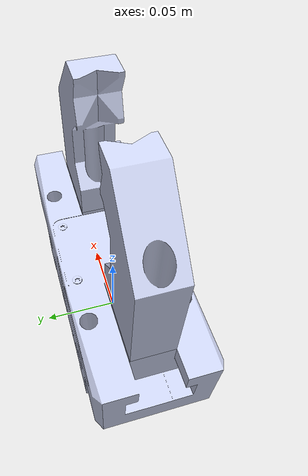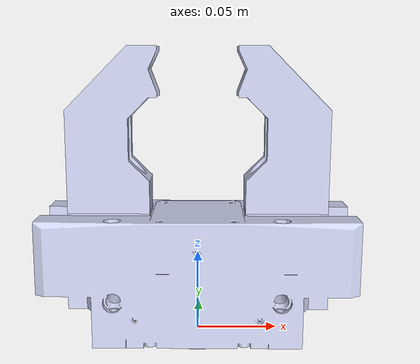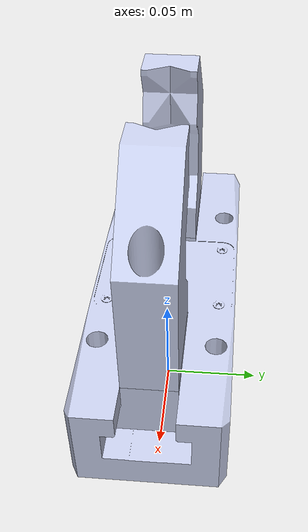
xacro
<?xml version="1.0" ?>

<robot name="pippo" xmlns:xacro="http://ros.org/wiki/xacro">
  <xacro:include filename="$(find schunk_gripper_jpg_p_160_description)/urdf/schunk_gripper_jpg_p_160.xacro" />
  <xacro:arg name="prefix" default=""/>

  <xacro:property name="prefix" value="'$(arg prefix)'" />
  <xacro:property name="type"   value="'rviz'" />

  <xacro:schunk_gripper_jpg_p_160 prefix="${prefix}" type="${type}"/>

  <link name="world"/>
  <joint name="world_joint" type="fixed">
    <origin xyz="0 0 0.0" rpy="0 0 0"/>
    <parent link="world" />
    <child link="${prefix}base" />
  </joint>

</robot>

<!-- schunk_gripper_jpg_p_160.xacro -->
<robot xmlns:xacro="http://ros.org/wiki/xacro">
  <xacro:macro name="schunk_gripper_jpg_p_160" params="prefix:='schunk_' interface:=hardware_interface/EffortJointInterface type:=rviz">

    <link name="${prefix}base" concave='yes'>
      <inertial>
        <origin
          xyz="0.00002849 -0.00022471 0.03657638"
          rpy="0 0 0" />
        <mass
          value="0.6818" />
        <inertia
          ixx="0.00154456"
          ixy="0.00000154"
          ixz="0.00000118"
          iyy="0.00283260"
          iyz="-0.00000405"
          izz="0.00195998" />
      </inertial>
      <visual>
        <origin
          xyz="0 0 0"
          rpy="0 0 0" />
        <geometry>
          <mesh
            filename="package://schunk_gripper_jpg_p_160_description/meshes/SCHUNK_parallel_gripper_base.STL" />
        </geometry>
        <material
          name="">
          <color
            rgba="0.79216 0.81961 0.93333 1" />
        </material>
      </visual>
      <collision concave="yes">
        <origin
          xyz="0 0 0"
          rpy="0 0 0" />
        <geometry>
          <mesh
            filename="package://schunk_gripper_jpg_p_160_description/meshes/SCHUNK_parallel_gripper_base.STL" />
        </geometry>
      </collision>
    </link>

    <joint name="${prefix}left_joint"
      type="prismatic">
      <origin
        xyz="0.0006 0 0.0481"
        rpy="0 0 0" />
      <parent
        link="${prefix}base" />
      <child
        link="${prefix}left_slider" />
      <axis
        xyz="1 0 0" />
      <limit lower="0.000" upper="0.017" effort="1000" velocity="1000000"/>
      <mimic joint="${prefix}left_joint_circle" multiplier="0.05" offset="-0.00086" />
    </joint>
    <link name="${prefix}left_slider" concave="yes">
      <inertial>
        <origin
          xyz="0.03936113 -0.00000000 0.01237203"
          rpy="0 0 0" />
        <mass
          value="0.070" />
        <inertia
          ixx="0.00002269"
          ixy="0.00000000"
          ixz="0.00003426"
          iyy="0.00015861"
          iyz="-0.00000000"
          izz="0.00015142" />
      </inertial>
      <visual>
        <origin
          xyz="0 0 0"
          rpy="0 0 0" />
        <geometry>
          <mesh
            filename="package://schunk_gripper_jpg_p_160_description/meshes/SCHUNK_parallel_gripper_finger_slider.STL" />
        </geometry>
        <material
          name="">
          <color
            rgba="0.79216 0.81961 0.93333 1" />
        </material>
      </visual>
      <collision concave="yes">
        <origin
          xyz="0 0 0"
          rpy="0 0 0" />
        <geometry>
          <mesh
            filename="package://schunk_gripper_jpg_p_160_description/meshes/SCHUNK_parallel_gripper_finger_slider.STL" />
        </geometry>
      </collision>
    </link>

    <joint name="${prefix}right_joint"
      type="prismatic">
      <origin
        xyz="-0.0006 0 0.0481"
        rpy="0 0 3.14159" />
      <parent
        link="${prefix}base" />
      <child
        link="${prefix}right_slider" />
      <axis
        xyz="1 0 0" />
      <limit lower="0.000" upper="0.017" effort="100000" velocity="1000000"/>
      <mimic joint="${prefix}left_joint" multiplier="1" offset="0" />
    </joint>
    <link name="${prefix}right_slider" concave="yes">
      <inertial>
        <origin
          xyz="0.03936113 -0.00000000 0.01237203"
          rpy="0 0 0" />
        <mass
          value="0.070" />
        <inertia
          ixx="0.00002269"
          ixy="0.00000000"
          ixz="0.00003426"
          iyy="0.00015861"
          iyz="-0.00000000"
          izz="0.00015142" />
      </inertial>
      <visual>
        <origin
          xyz="0 0 0"
          rpy="0 0 0" />
        <geometry>
          <mesh
            filename="package://schunk_gripper_jpg_p_160_description/meshes/SCHUNK_parallel_gripper_finger_slider.STL" />
        </geometry>
        <material
          name="">
          <color
            rgba="0.79216 0.81961 0.93333 1" />
        </material>
      </visual>
      <collision concave="yes">
        <origin
          xyz="0 0 0"
          rpy="0 0 0" />
        <geometry>
          <mesh
            filename="package://schunk_gripper_jpg_p_160_description/meshes/SCHUNK_parallel_gripper_finger_slider.STL" />
        </geometry>
      </collision>
    </link>

    <joint name="${prefix}left_finger_joint" type="fixed">
      <origin xyz="0.0285 0 0.0289" rpy="0 0 3.14159" />
      <parent link="${prefix}left_slider" />
      <child link="${prefix}left_finger" />
      <axis xyz="0 0 0" />
    </joint>
    <link name="${prefix}left_finger" concave="yes">
      <inertial>
        <origin
          xyz="-0.01665438 -0.00000438 0.05348249"
          rpy="0 0 0" />
        <mass
          value="0.10" />
        <inertia
          ixx="0.00041666"
          ixy="-0.00000001"
          ixz="-0.00005970"
          iyy="0.00047996"
          iyz="-0.00000004"
          izz="0.00007666" />
      </inertial>
      <visual>
        <origin
          xyz="0 0 0"
          rpy="0 0 0" />
        <geometry>
          <mesh
            filename="package://schunk_gripper_jpg_p_160_description/meshes/Finger.STL" />
        </geometry>
        <material
          name="">
          <color
            rgba="0.79216 0.81961 0.93333 1" />
        </material>
      </visual>
      <collision concave="yes">
        <origin
          xyz="0 0 0"
          rpy="0 0 0" />
        <geometry>
          <mesh
            filename="package://schunk_gripper_jpg_p_160_description/meshes/Finger.STL" />
        </geometry>
      </collision>
    </link>

    <joint name="${prefix}right_finger_joint" type="fixed">
      <origin xyz="0.0285 0 0.0289" rpy="0 0 3.14159" />
      <parent link="${prefix}right_slider" />
      <child link="${prefix}right_finger" />
      <axis xyz="0 0 0" />
    </joint>
    <link name="${prefix}right_finger" concave="yes">
      <inertial>
        <origin
          xyz="-0.01665438 -0.00000438 0.05348249"
          rpy="0 0 0" />
        <mass
          value="0.10" />
        <inertia
          ixx="0.00041666"
          ixy="-0.00000001"
          ixz="-0.00005970"
          iyy="0.00047996"
          iyz="-0.00000004"
          izz="0.00007666" />
      </inertial>
      <visual>
        <origin
          xyz="0 0 0"
          rpy="0 0 0" />
        <geometry>
          <mesh
            filename="package://schunk_gripper_jpg_p_160_description/meshes/Finger.STL" />
        </geometry>
        <material
          name="">
          <color
            rgba="0.79216 0.81961 0.93333 1" />
        </material>
      </visual>
      <collision concave="yes">
        <origin
          xyz="0 0 0"
          rpy="0 0 0" />
        <geometry>
          <mesh
            filename="package://schunk_gripper_jpg_p_160_description/meshes/Finger.STL" />
        </geometry>
      </collision>
    </link>

    <xacro:if value="${type == 'rviz'}">
      <joint name="${prefix}working_point_joint" type="fixed">
        <origin xyz="0.0 0 0.163" rpy="0 0 0" />
        <parent link="${prefix}base" />
        <child link="${prefix}working_point" />
        <axis xyz="0 0 0" />
      </joint>
      <link name="${prefix}working_point" />
    </xacro:if>

    <xacro:include filename="$(find schunk_gripper_jpg_p_160_description)/urdf/transmission.xacro" />
    <xacro:transmission prefix="${prefix}"/>

    <joint name="${prefix}left_joint_circle"
      type="revolute">
      <origin
        xyz="0.0 0.0 0.0"
        rpy="0 0.0 0" />
      <parent
        link="${prefix}base" />
      <child
        link="${prefix}left_circle" />
      <axis
        xyz="0 1 0" />
      <limit lower="-100" upper="100" effort="10000" velocity="1000"/>
    </joint>
    <link name="${prefix}left_circle">
      <inertial>
        <origin
          xyz="0.0 -0.0 0.0"
          rpy="0 0 0" />
        <mass
          value="0.0001" />
        <inertia
          ixx="0.000001"
          ixy="0.0"
          ixz="0.0"
          iyy="0.000001"
          iyz="-0.0"
          izz="0.000001" />
      </inertial>
    </link>
    <joint name="${prefix}right_joint_circle"
      type="revolute">
      <origin
        xyz="0.0 0.0 0.0"
        rpy="0 0.0 0" />
      <parent
        link="${prefix}base" />
      <child
        link="${prefix}right_circle" />
      <axis
        xyz="0 1 0" />
      <limit lower="-100" upper="100" effort="10000" velocity="1000"/>
    </joint>
    <link name="${prefix}right_circle">
      <inertial>
        <origin
          xyz="0.0 -0.0 0.0"
          rpy="0 0 0" />
        <mass
          value="0.0001" />
        <inertia
          ixx="0.000001"
          ixy="0.0"
          ixz="0.0"
          iyy="0.000001"
          iyz="-0.0"
          izz="0.000001" />
      </inertial>
    </link>

    <joint name="${prefix}middle_left_joint_circle"
      type="prismatic">
      <origin
        xyz="0 0 0"
        rpy="0 0 0" />
      <parent
        link="${prefix}left_circle" />
      <child
        link="${prefix}middle_left_circle" />
      <axis
        xyz="0 0 1" />
      <limit lower="-1" upper="1" effort="10000" velocity="1000"/>
    </joint>
    <link name="${prefix}middle_left_circle">
      <inertial>
        <origin
          xyz="0.0 -0.0 0.0"
          rpy="0 0 0" />
        <mass
          value="0.0001" />
        <inertia
          ixx="0.000001"
          ixy="0.0"
          ixz="0.0"
          iyy="0.000001"
          iyz="-0.0"
          izz="0.000001" />
      </inertial>
    </link>
    <joint name="${prefix}end_left_joint_circle"
      type="revolute">
      <origin
        xyz="0.0 0.0 0.0"
        rpy="0 0 0" />
      <parent
        link="${prefix}middle_left_circle" />
      <child
        link="${prefix}end_left_circle" />
      <axis
        xyz="0 1 0" />
      <limit lower="-200" upper="200" effort="1000" velocity="1000"/>
    </joint>
    <link name="${prefix}end_left_circle">
      <inertial>
        <origin
          xyz="0.0 -0.0 0.0"
          rpy="0 0 0" />
        <mass
          value="0.0001" />
        <inertia
          ixx="0.000001"
          ixy="0.0"
          ixz="0.0"
          iyy="0.000001"
          iyz="-0.0"
          izz="0.000001" />
      </inertial>
      <visual>
        <origin
          xyz="0 0 0"
          rpy="0 0 0" />
        <geometry>
          <box size="0.01 0.05 0.01"/>
      </geometry>
        <material
          name="">
          <color
            rgba="0.79216 0.81961 0.93333 1" />
        </material>
      </visual>
    </link>

    <joint name="${prefix}middle_right_joint_circle"
      type="prismatic">
      <origin
        xyz="0 0 0"
        rpy="0 0 0" />
      <parent
        link="${prefix}right_circle" />
      <child
        link="${prefix}middle_right_circle" />
      <axis
        xyz="0 0 1" />
      <limit lower="-1" upper="1" effort="10000" velocity="1000"/>
    </joint>
    <link name="${prefix}middle_right_circle">
      <inertial>
        <origin
          xyz="0.0 -0.0 0.0"
          rpy="0 0 0" />
        <mass
          value="0.0001" />
        <inertia
          ixx="0.000001"
          ixy="0.0"
          ixz="0.0"
          iyy="0.000001"
          iyz="-0.0"
          izz="0.000001" />
      </inertial>
    </link>
    <joint name="${prefix}end_right_joint_circle"
      type="revolute">
      <origin
        xyz="0.0 0.0 0.0"
        rpy="0 0 0" />
      <parent
        link="${prefix}middle_right_circle" />
      <child
        link="${prefix}end_right_circle" />
      <axis
        xyz="0 1 0" />
      <limit lower="-200" upper="200" effort="1000" velocity="1000"/>
    </joint>
    <link name="${prefix}end_right_circle">
      <inertial>
        <origin
          xyz="0.0 -0.0 0.0"
          rpy="0 0 0" />
        <mass
          value="0.0001" />
        <inertia
          ixx="0.000001"
          ixy="0.0"
          ixz="0.0"
          iyy="0.000001"
          iyz="-0.0"
          izz="0.000001" />
      </inertial>
      <visual>
        <origin
          xyz="0 0 0"
          rpy="0 0 0" />
        <geometry>
          <box size="0.01 0.05 0.01"/>
      </geometry>
        <material
          name="">
          <color
            rgba="0.79216 0.81961 0.93333 1" />
        </material>
      </visual>
    </link>

    <xacro:unless value="${type == 'rviz'}">
      <joint name="${prefix}shadow_left_joint"
        type="fixed">
        <origin
          xyz="0 0 0"
          rpy="0 0 0" />
        <parent
          link="${prefix}left_slider" />
        <child
          link="${prefix}shadow_left_slider" />
      </joint>
      <link name="${prefix}shadow_left_slider">
        <inertial>
          <origin xyz="0 0 0" rpy="0 0 0" />
          <mass value="0.00001" />
          <inertia ixx="0.00001" ixy="0.0" ixz="0.0" iyy="0.00001" iyz="0.0" izz="0.00001" />
        </inertial>
      </link>
      <joint name="${prefix}shadow_right_joint"
        type="fixed">
        <origin
          xyz="0 0 0"
          rpy="0 0 0" />
        <parent
          link="${prefix}right_slider" />
        <child
          link="${prefix}shadow_right_slider" />
      </joint>
      <link name="${prefix}shadow_right_slider">
        <inertial>
          <origin xyz="0 0 0" rpy="0 0 0" />
          <mass value="0.00001" />
          <inertia ixx="0.00001" ixy="0.0" ixz="0.0" iyy="0.00001" iyz="0.0" izz="0.00001" />
        </inertial>
      </link>
    </xacro:unless>
  </xacro:macro>
</robot>
